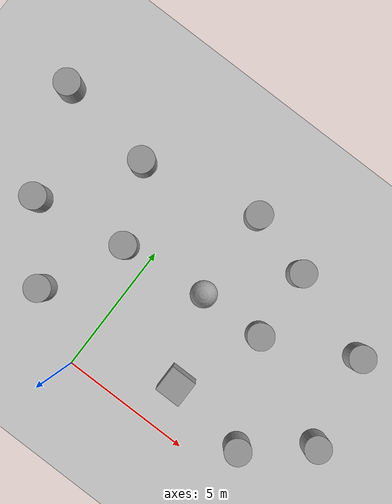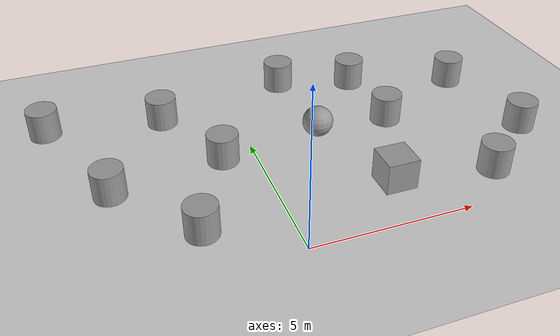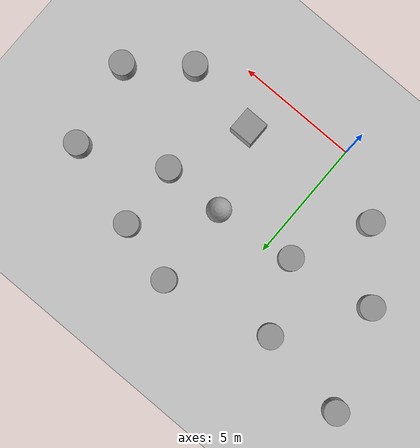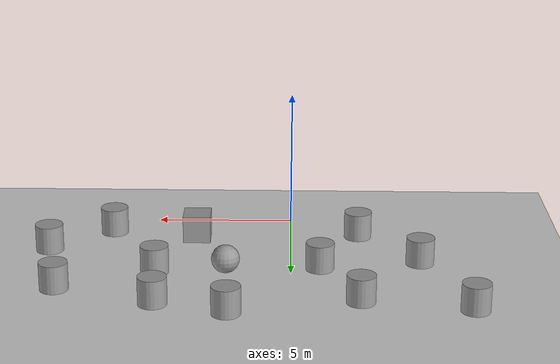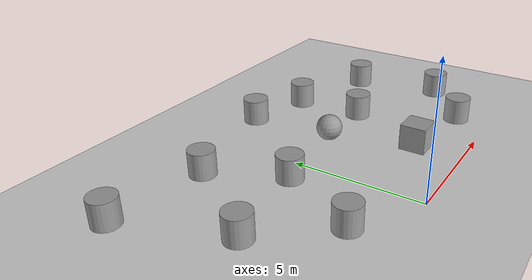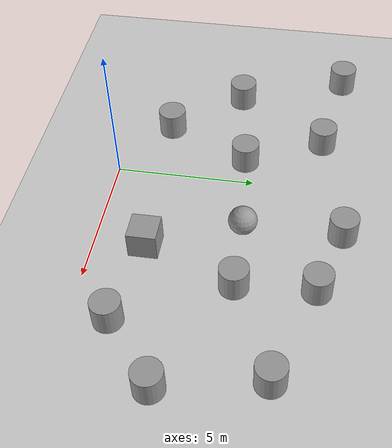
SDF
<sdf version="1.7">
 <world name="default">
  <light name="sun" type="directional">
   <pose>0 0 10 0 -0 0</pose>
   <diffuse>0.8 0.8 0.8 1</diffuse>
   <specular>0.2 0.2 0.2 1</specular>
   <attenuation>
    <range>1000</range>
    <constant>0.9</constant>
    <linear>0.01</linear>
    <quadratic>0.001</quadratic>
   </attenuation>
   <direction>-0.5 0.1 -0.9</direction>
   <spot><inner_angle>0</inner_angle><outer_angle>0</outer_angle><falloff>0</falloff></spot>
  </light>
  <model name="ground_plane">
   <static>1</static>
   <link name="link">
    <collision name="collision">
     <geometry><plane><normal>0 0 1</normal><size>100 100</size></plane></geometry>
     <surface>
      <contact><collide_bitmask>65535</collide_bitmask></contact>
      <friction><ode><mu>100</mu><mu2>50</mu2></ode></friction>
     </surface>
    </collision>
    <visual name="visual">
     <cast_shadows>0</cast_shadows>
     <geometry><plane><normal>0 0 1</normal><size>100 100</size></plane></geometry>
     <material>
      <script><uri>file://media/materials/scripts/gazebo.material</uri><name>Gazebo/Grey</name></script>
     </material>
    </visual>
   </link>
  </model>
  <gravity>0 0 -9.8</gravity>
  <magnetic_field>6e-06 2.3e-05 -4.2e-05</magnetic_field>
  <atmosphere type="adiabatic"/>
  <physics type="ode">
   <max_step_size>0.001</max_step_size>
   <real_time_factor>1</real_time_factor>
   <real_time_update_rate>1000</real_time_update_rate>
  </physics>
  <scene><ambient>0.4 0.4 0.4 1</ambient><background>0.7 0.7 0.7 1</background><shadows>1</shadows></scene>
  <audio><device>default</device></audio>
  <spherical_coordinates>
   <surface_model>EARTH_WGS84</surface_model>
   <latitude_deg>0</latitude_deg>
   <longitude_deg>0</longitude_deg>
   <elevation>0</elevation>
   <heading_deg>0</heading_deg>
  </spherical_coordinates>
  <model name="unit_box">
   <pose>3.46795 1.79081 0.499995 0 1e-05 0</pose>
   <link name="link">
    <inertial>
     <mass>1</mass>
     <inertia>
      <ixx>0.166667</ixx>
      <ixy>0</ixy>
      <ixz>0</ixz>
      <iyy>0.166667</iyy>
      <iyz>0</iyz>
      <izz>0.166667</izz>
     </inertia>
    </inertial>
    <collision name="collision"><geometry><box><size>1 1 1</size></box></geometry></collision>
    <visual name="visual">
     <geometry><box><size>1 1 1</size></box></geometry>
     <material>
      <script><name>Gazebo/Grey</name><uri>file://media/materials/scripts/gazebo.material</uri></script>
     </material>
    </visual>
   </link>
  </model>
  <model name="unit_cylinder">
   <pose>4.77639 4.97725 0.499998 3e-06 -3e-06 0</pose>
   <link name="link">
    <inertial>
     <mass>1</mass>
     <inertia><ixx>0.145833</ixx><ixy>0</ixy><ixz>0</ixz><iyy>0.145833</iyy><iyz>0</iyz><izz>0.125</izz></inertia>
    </inertial>
    <collision name="collision">
     <geometry><cylinder><radius>0.5</radius><length>1</length></cylinder></geometry>
    </collision>
    <visual name="visual">
     <geometry><cylinder><radius>0.5</radius><length>1</length></cylinder></geometry>
     <material>
      <script><name>Gazebo/Grey</name><uri>file://media/materials/scripts/gazebo.material</uri></script>
     </material>
    </visual>
   </link>
  </model>
  <model name="unit_cylinder_0">
   <pose>8.75269 3.07553 0.499992 -3e-06 3e-06 0</pose>
   <link name="link">
    <inertial>
     <mass>1</mass>
     <inertia><ixx>0.145833</ixx><ixy>0</ixy><ixz>0</ixz><iyy>0.145833</iyy><iyz>0</iyz><izz>0.125</izz></inertia>
    </inertial>
    <collision name="collision">
     <geometry><cylinder><radius>0.5</radius><length>1</length></cylinder></geometry>
    </collision>
    <visual name="visual">
     <geometry><cylinder><radius>0.5</radius><length>1</length></cylinder></geometry>
     <material>
      <script><name>Gazebo/Grey</name><uri>file://media/materials/scripts/gazebo.material</uri></script>
     </material>
    </visual>
   </link>
  </model>
  <model name="unit_cylinder_1">
   <pose>2.13688 8.33469 0.499992 -3e-06 3e-06 0</pose>
   <link name="link">
    <inertial>
     <mass>1</mass>
     <inertia><ixx>0.145833</ixx><ixy>0</ixy><ixz>0</ixz><iyy>0.145833</iyy><iyz>0</iyz><izz>0.125</izz></inertia>
    </inertial>
    <collision name="collision">
     <geometry><cylinder><radius>0.5</radius><length>1</length></cylinder></geometry>
    </collision>
    <visual name="visual">
     <geometry><cylinder><radius>0.5</radius><length>1</length></cylinder></geometry>
     <material>
      <script><name>Gazebo/Grey</name><uri>file://media/materials/scripts/gazebo.material</uri></script>
     </material>
    </visual>
   </link>
  </model>
  <model name="unit_cylinder_2">
   <pose>-1.01204 4.57774 0.499992 -3e-06 4e-06 0</pose>
   <link name="link">
    <inertial>
     <mass>1</mass>
     <inertia><ixx>0.145833</ixx><ixy>0</ixy><ixz>0</ixz><iyy>0.145833</iyy><iyz>0</iyz><izz>0.125</izz></inertia>
    </inertial>
    <collision name="collision">
     <geometry><cylinder><radius>0.5</radius><length>1</length></cylinder></geometry>
    </collision>
    <visual name="visual">
     <geometry><cylinder><radius>0.5</radius><length>1</length></cylinder></geometry>
     <material>
      <script><name>Gazebo/Grey</name><uri>file://media/materials/scripts/gazebo.material</uri></script>
     </material>
    </visual>
   </link>
  </model>
  <model name="unit_cylinder_3">
   <pose>-2.33122 7.34649 0.499998 3e-06 -4e-06 0</pose>
   <link name="link">
    <inertial>
     <mass>1</mass>
     <inertia><ixx>0.145833</ixx><ixy>0</ixy><ixz>0</ixz><iyy>0.145833</iyy><iyz>0</iyz><izz>0.125</izz></inertia>
    </inertial>
    <collision name="collision">
     <geometry><cylinder><radius>0.5</radius><length>1</length></cylinder></geometry>
    </collision>
    <visual name="visual">
     <geometry><cylinder><radius>0.5</radius><length>1</length></cylinder></geometry>
     <material>
      <script><name>Gazebo/Grey</name><uri>file://media/materials/scripts/gazebo.material</uri></script>
     </material>
    </visual>
   </link>
  </model>
  <model name="unit_cylinder_4">
   <pose>4.61237 7.63608 0.499992 -3e-06 4e-06 0</pose>
   <link name="link">
    <inertial>
     <mass>1</mass>
     <inertia><ixx>0.145833</ixx><ixy>0</ixy><ixz>0</ixz><iyy>0.145833</iyy><iyz>0</iyz><izz>0.125</izz></inertia>
    </inertial>
    <collision name="collision">
     <geometry><cylinder><radius>0.5</radius><length>1</length></cylinder></geometry>
    </collision>
    <visual name="visual">
     <geometry><cylinder><radius>0.5</radius><length>1</length></cylinder></geometry>
     <material>
      <script><name>Gazebo/Grey</name><uri>file://media/materials/scripts/gazebo.material</uri></script>
     </material>
    </visual>
   </link>
  </model>
  <model name="unit_cylinder_5">
   <pose>-4.5694 4.02165 0.499992 -3e-06 4e-06 0</pose>
   <link name="link">
    <inertial>
     <mass>1</mass>
     <inertia><ixx>0.145833</ixx><ixy>0</ixy><ixz>0</ixz><iyy>0.145833</iyy><iyz>0</iyz><izz>0.125</izz></inertia>
    </inertial>
    <collision name="collision">
     <geometry><cylinder><radius>0.5</radius><length>1</length></cylinder></geometry>
    </collision>
    <visual name="visual">
     <geometry><cylinder><radius>0.5</radius><length>1</length></cylinder></geometry>
     <material>
      <script><name>Gazebo/Grey</name><uri>file://media/materials/scripts/gazebo.material</uri></script>
     </material>
    </visual>
   </link>
  </model>
  <model name="unit_sphere">
   <pose>2.29344 4.93069 0.5 0 -0 0</pose>
   <link name="link">
    <inertial>
     <mass>1</mass>
     <inertia><ixx>0.1</ixx><ixy>0</ixy><ixz>0</ixz><iyy>0.1</iyy><iyz>0</iyz><izz>0.1</izz></inertia>
    </inertial>
    <collision name="collision"><geometry><sphere><radius>0.5</radius></sphere></geometry></collision>
    <visual name="visual">
     <geometry><sphere><radius>0.5</radius></sphere></geometry>
     <material>
      <script><name>Gazebo/Grey</name><uri>file://media/materials/scripts/gazebo.material</uri></script>
     </material>
    </visual>
   </link>
  </model>
  <model name="unit_cylinder_6">
   <pose>6.587 1.29935 0.499993 -3e-06 -3e-06 0</pose>
   <link name="link">
    <inertial>
     <mass>1</mass>
     <inertia><ixx>0.145833</ixx><ixy>0</ixy><ixz>0</ixz><iyy>0.145833</iyy><iyz>0</iyz><izz>0.125</izz></inertia>
    </inertial>
    <collision name="collision">
     <geometry><cylinder><radius>0.5</radius><length>1</length></cylinder></geometry>
    </collision>
    <visual name="visual">
     <geometry><cylinder><radius>0.5</radius><length>1</length></cylinder></geometry>
     <material>
      <script><name>Gazebo/Grey</name><uri>file://media/materials/scripts/gazebo.material</uri></script>
     </material>
    </visual>
   </link>
  </model>
  <model name="unit_cylinder_7">
   <pose>-2.47009 1.55127 0.499997 3e-06 4e-06 -0</pose>
   <link name="link">
    <inertial>
     <mass>1</mass>
     <inertia><ixx>0.145833</ixx><ixy>0</ixy><ixz>0</ixz><iyy>0.145833</iyy><iyz>0</iyz><izz>0.125</izz></inertia>
    </inertial>
    <collision name="collision">
     <geometry><cylinder><radius>0.5</radius><length>1</length></cylinder></geometry>
    </collision>
    <visual name="visual">
     <geometry><cylinder><radius>0.5</radius><length>1</length></cylinder></geometry>
     <material>
      <script><name>Gazebo/Grey</name><uri>file://media/materials/scripts/gazebo.material</uri></script>
     </material>
    </visual>
   </link>
  </model>
  <model name="unit_cylinder_8">
   <pose>8.07181 6.52707 0.499993 -3e-06 -4e-06 -0</pose>
   <link name="link">
    <inertial>
     <mass>1</mass>
     <inertia><ixx>0.145833</ixx><ixy>0</ixy><ixz>0</ixz><iyy>0.145833</iyy><iyz>0</iyz><izz>0.125</izz></inertia>
    </inertial>
    <collision name="collision">
     <geometry><cylinder><radius>0.5</radius><length>1</length></cylinder></geometry>
    </collision>
    <visual name="visual">
     <geometry><cylinder><radius>0.5</radius><length>1</length></cylinder></geometry>
     <material>
      <script><name>Gazebo/Grey</name><uri>file://media/materials/scripts/gazebo.material</uri></script>
     </material>
    </visual>
   </link>
  </model>
  <model name="unit_cylinder_9">
   <pose>-6.07165 7.92087 0.499997 3e-06 4e-06 -0</pose>
   <link name="link">
    <inertial>
     <mass>1</mass>
     <inertia><ixx>0.145833</ixx><ixy>0</ixy><ixz>0</ixz><iyy>0.145833</iyy><iyz>0</iyz><izz>0.125</izz></inertia>
    </inertial>
    <collision name="collision">
     <geometry><cylinder><radius>0.5</radius><length>1</length></cylinder></geometry>
    </collision>
    <visual name="visual">
     <geometry><cylinder><radius>0.5</radius><length>1</length></cylinder></geometry>
     <material>
      <script><name>Gazebo/Grey</name><uri>file://media/materials/scripts/gazebo.material</uri></script>
     </material>
    </visual>
   </link>
  </model>
 </world>
</sdf>
